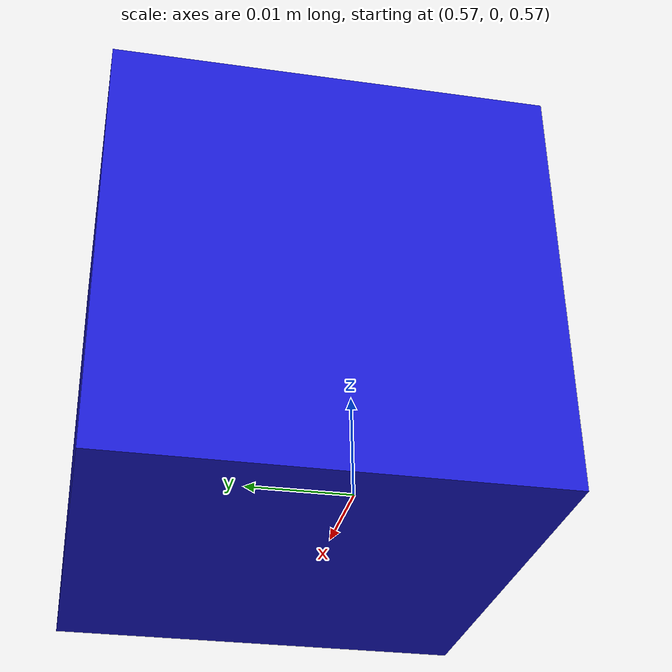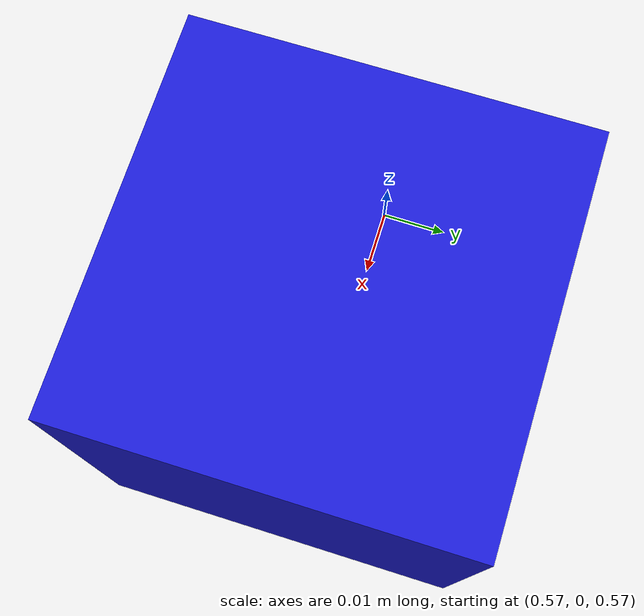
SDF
<?xml version="1.0"?>
<sdf version="1.6">
  <model name="sim_camera">
    <!-- A simple static camera model that publishes /sim_camera/image_raw and /sim_camera/camera_info -->
    <static>true</static>
    <pose>0.6 0 0.6 0 0 3.14159</pose>

    <link name="camera_link">
      <pose>0 0 0 0 0 0</pose>

      <!-- Tiny visual to see the camera box in Gazebo -->
      <visual name="visual">
        <geometry>
          <box>
            <size>0.05 0.05 0.05</size>
          </box>
        </geometry>
        <material>
          <ambient>0.1 0.1 0.8 1</ambient>
          <diffuse>0.1 0.1 0.8 1</diffuse>
        </material>
      </visual>

      <!-- Camera sensor -->
      <sensor name="rgb_camera" type="camera">
        <always_on>true</always_on>
        <update_rate>30</update_rate>
        <visualize>true</visualize>
        <camera>
          <horizontal_fov>1.396</horizontal_fov> <!-- ~80 deg -->
          <image>
            <width>640</width>
            <height>480</height>
            <format>R8G8B8</format>
          </image>
          <clip>
            <near>0.05</near>
            <far>50</far>
          </clip>
        </camera>

        <plugin name="gazebo_ros_camera" filename="libgazebo_ros_camera.so">
          <ros>
            <namespace>/sim_camera</namespace>
            <remapping>image:=image_raw</remapping>
            <remapping>camera_info:=camera_info</remapping>
          </ros>
          <camera_name>sim_camera</camera_name>
          <frame_name>sim_camera_optical_frame</frame_name>
          <hack_baseline>0.0</hack_baseline>
          <output>screen</output>
        </plugin>
      </sensor>
    </link>
  </model>
</sdf>
